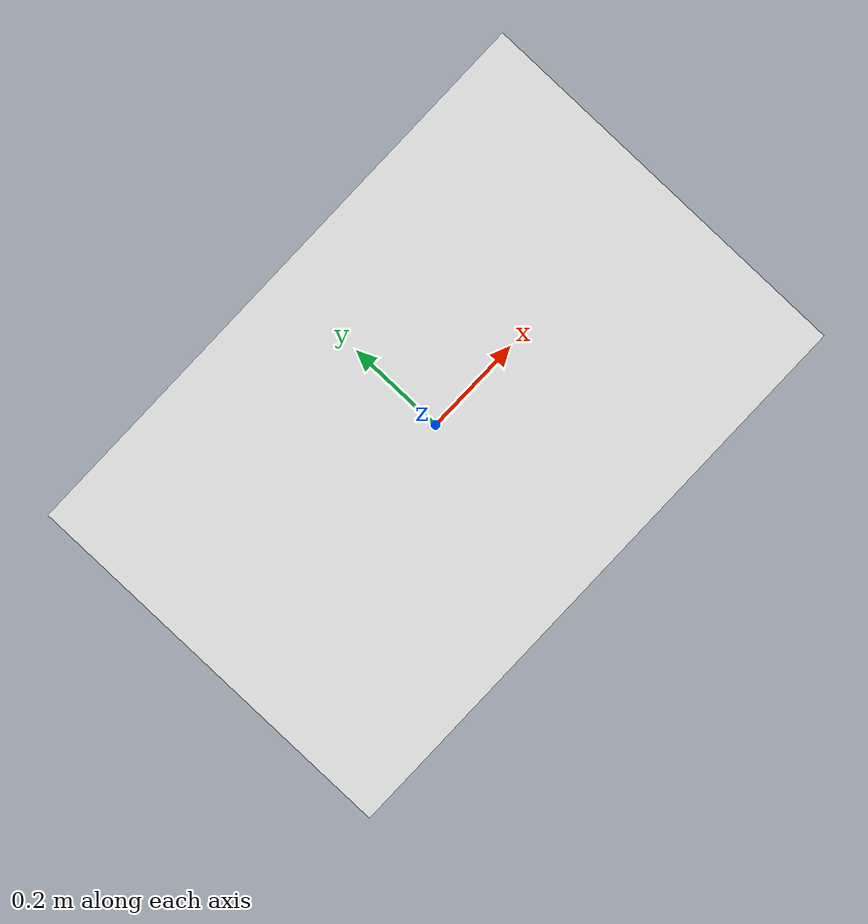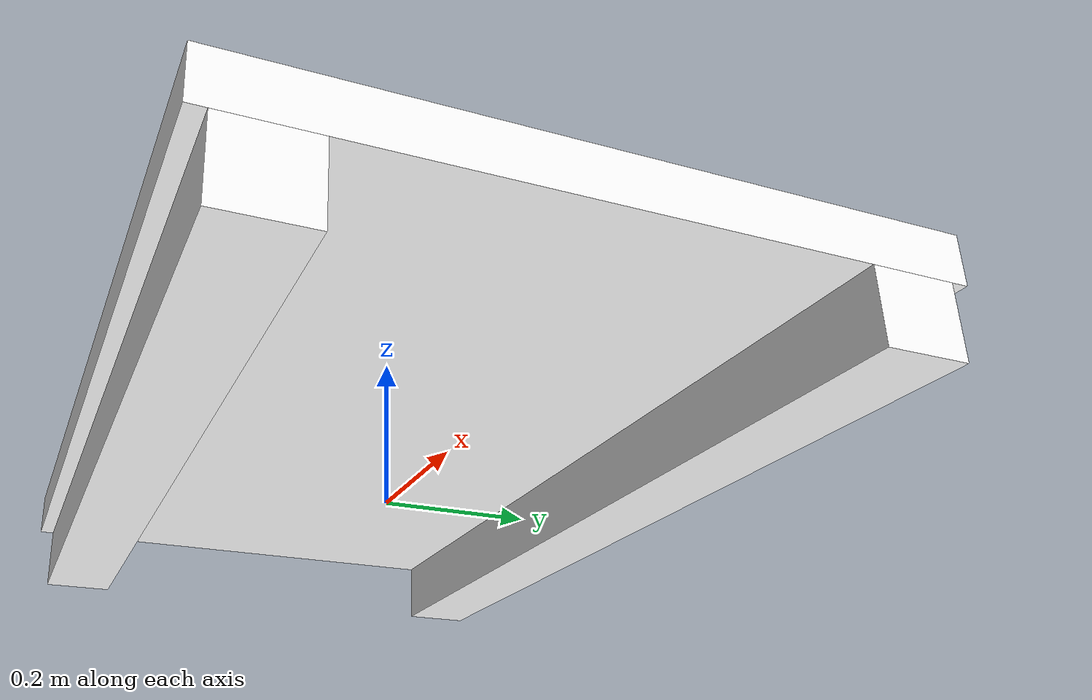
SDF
<?xml version="1.0"?>
<sdf version="1.10">
  <model name="pallet">
    <static>true</static>
      <link name="body">
        <collision name="deck_col"><pose>0 0 0.12 0 0 0</pose>
          <geometry><box><size>1.20 0.80 0.06</size></box></geometry></collision>
        <visual name="deck_vis"><pose>0 0 0.12 0 0 0</pose>
          <geometry><box><size>1.20 0.80 0.06</size></box></geometry>
          <material>
          <diffuse>1 1 1 1</diffuse>
          <specular>0.15 0.15 0.15 1</specular>
          <pbr><metal>
            <albedo_map>model://slam_assets/materials/textures/pallet_wood.png</albedo_map>
            <roughness>0.85</roughness><metalness>0.0</metalness>
          </metal></pbr>
        </material>
        </visual>
        <collision name="footA_col"><pose>0 -0.33 0.045 0 0 0</pose>
          <geometry><box><size>1.20 0.10 0.09</size></box></geometry></collision>
        <visual name="footA_vis"><pose>0 -0.33 0.045 0 0 0</pose>
          <geometry><box><size>1.20 0.10 0.09</size></box></geometry>
          <material>
          <diffuse>1 1 1 1</diffuse>
          <specular>0.15 0.15 0.15 1</specular>
          <pbr><metal>
            <albedo_map>model://slam_assets/materials/textures/pallet_wood.png</albedo_map>
            <roughness>0.85</roughness><metalness>0.0</metalness>
          </metal></pbr>
        </material>
        </visual>
        <collision name="footB_col"><pose>0 0.33 0.045 0 0 0</pose>
          <geometry><box><size>1.20 0.10 0.09</size></box></geometry></collision>
        <visual name="footB_vis"><pose>0 0.33 0.045 0 0 0</pose>
          <geometry><box><size>1.20 0.10 0.09</size></box></geometry>
          <material>
          <diffuse>1 1 1 1</diffuse>
          <specular>0.15 0.15 0.15 1</specular>
          <pbr><metal>
            <albedo_map>model://slam_assets/materials/textures/pallet_wood.png</albedo_map>
            <roughness>0.85</roughness><metalness>0.0</metalness>
          </metal></pbr>
        </material>
        </visual>
      </link>
  </model>
</sdf>
